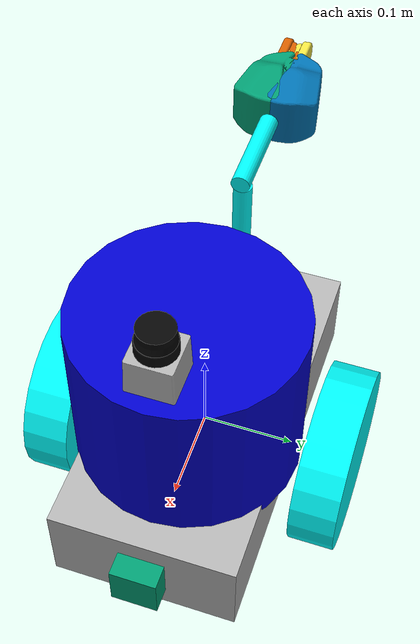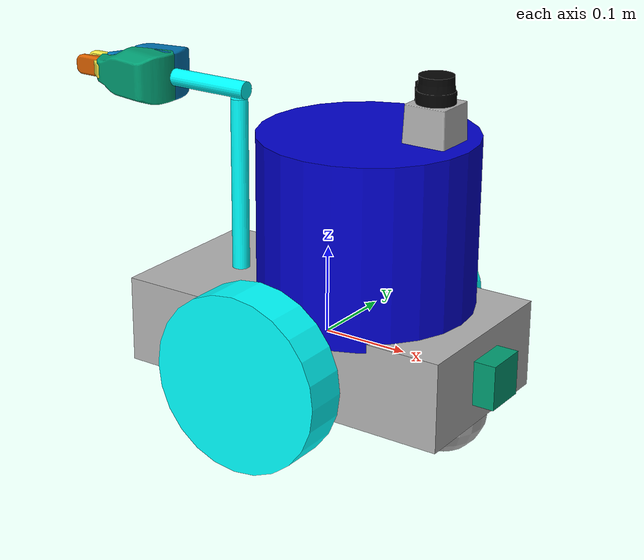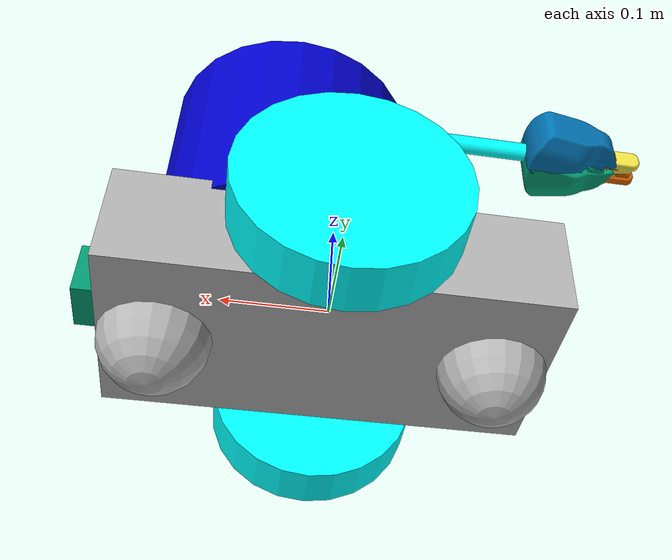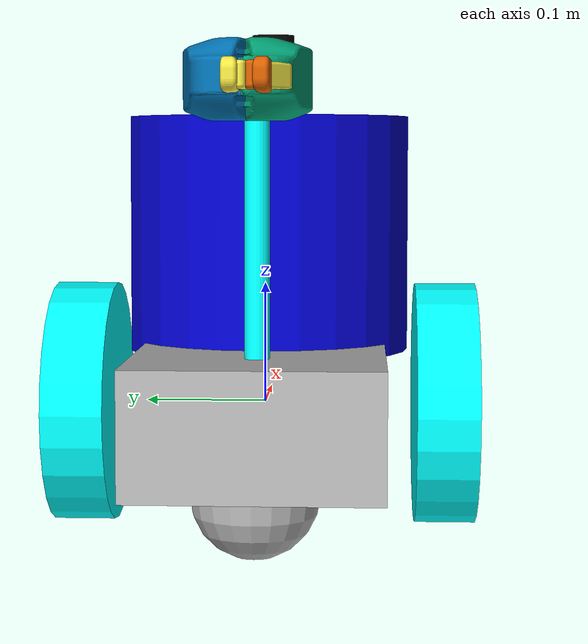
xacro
<?xml version='1.0'?>

<robot name="udacity_bot_v2" xmlns:xacro="http://www.ros.org/wiki/xacro">

  <xacro:include filename="$(find udacity_bot)/urdf/udacity_bot.gazebo" />
  <xacro:include filename="$(find udacity_bot)/urdf/gripper.xacro" />
  <link name="robot_footprint"></link>

  <joint name="robot_footprint_joint" type="fixed">
    <origin xyz="0 0 0" rpy="0 0 0" />
    <parent link="robot_footprint"/>
    <child link="chassis" />
  </joint>

  <link name='chassis'>
    <pose>0 0 0.1 0 0 0</pose>

    <inertial>
      <mass value="15.0"/>
      <origin xyz="0.0 0 0" rpy=" 0 0 0"/>
      <inertia
          ixx="0.1" ixy="0" ixz="0"
          iyy="0.1" iyz="0"
          izz="0.1"
      />
    </inertial>

    <collision name='collision'>
      <origin xyz="0 0 0" rpy=" 0 0 0"/>
      <geometry>
        <box size=".4 .2 .1"/>
      </geometry>
    </collision>

    <visual name='chassis_visual'>
      <origin xyz="0 0 0" rpy=" 0 0 0"/>
      <geometry>
        <box size=".4 .2 .1"/>
      </geometry>
    </visual>

    <collision name='back_caster_collision'>
      <origin xyz="-0.15 0 -0.05" rpy=" 0 0 0"/>
      <geometry>
        <sphere radius="0.05"/>
      </geometry>
      <surface>
        <friction>
          <ode>
            <mu>0</mu>
            <mu2>0</mu2>
            <slip1>1.0</slip1>
            <slip2>1.0</slip2>
          </ode>
        </friction>
      </surface>
    </collision>

    <visual name='back_caster_visual'>
      <origin xyz="-0.15 0 -0.05" rpy=" 0 0 0"/>
      <geometry>
        <sphere radius="0.05"/>
      </geometry>
    </visual>

    <collision name='front_caster_collision'>
      <origin xyz="0.15 0 -0.05" rpy=" 0 0 0"/>
      <geometry>
        <sphere radius="0.05"/>
      </geometry>
      <surface>
        <friction>
          <ode>
            <mu>0</mu>
            <mu2>0</mu2>
            <slip1>1.0</slip1>
            <slip2>1.0</slip2>
          </ode>
        </friction>
      </surface>
    </collision>

    <visual name='front_caster_visual'>
      <origin xyz="0.15 0 -0.05" rpy=" 0 0 0"/>
      <geometry>
        <sphere radius="0.05"/>
      </geometry>
    </visual>

   <visual name='upper_body_visual'>
     <origin xyz="0.05 0.0 0.14" rpy="0.0 0.0 0.0"/>
     <geometry>
       <cylinder radius="0.12" length="0.20"/>
     </geometry>
     <material name="blue">
       <color rgba="0 0 0.8 1"/>
     </material>
   </visual>

   <collision>
     <origin xyz="0.05 0.0 0.14" rpy="0.0 0.0 0.0"/>
     <geometry>
       <cylinder radius="0.12" length="0.20"/>
     </geometry>
   </collision>

  </link>

 <!-- WHEELS -->
 <link name="right_wheel">
   <inertial>
     <origin xyz="0.0 0.0 0.0" rpy="0.0 1.5707 1.5707"/>
     <mass value="5"/>
      <inertia
          ixx="0.1" ixy="0" ixz="0"
          iyy="0.1" iyz="0"
          izz="0.1"
      />
    </inertial>

   <visual>
     <origin xyz="0.0 0.0 0.0" rpy="0.0 1.5707 1.5707"/>
     <geometry>
       <cylinder radius="0.1" length="0.05"/>
     </geometry>
     <material name="Cyan">
       <color rgba="0 1.0 1.0 1.0"/>
     </material>
   </visual>

   <collision>
     <origin xyz="0.0 0.0 0.0" rpy="0.0 1.5707 1.5707"/>
     <geometry>
       <cylinder radius="0.1" length="0.05"/>
     </geometry>
   </collision>
 </link>

 <link name="left_wheel">
   <inertial>
     <origin xyz="0.0 0.0 0.0" rpy="0.0 1.5707 1.5707"/>
     <mass value="5"/>
      <inertia
          ixx="0.1" ixy="0" ixz="0"
          iyy="0.1" iyz="0"
          izz="0.1"
      />
    </inertial>

   <visual>
     <origin xyz="0.0 0.0 0.0" rpy="0.0 1.5707 1.5707"/>
     <geometry>
       <cylinder radius="0.1" length="0.05"/>
     </geometry>
     <material name="Cyan">
       <color rgba="0 1.0 1.0 1.0"/>
     </material>
   </visual>

   <collision>
     <origin xyz="0.0 0.0 0.0" rpy="0.0 1.5707 1.5707"/>
     <geometry>
       <cylinder radius="0.1" length="0.05"/>
     </geometry>
   </collision>
 </link>

  <joint type="continuous" name="left_wheel_hinge">
    <origin xyz="0 0.15 0" rpy="0 0 0"/>
    <child link="left_wheel"/>
    <parent link="chassis"/>
    <axis xyz="0 1 0" rpy="0 0 0"/>
    <limit effort="10000" velocity="1000"/>
    <joint_properties damping="1.0" friction="1.0"/>
  </joint>

  <joint type="continuous" name="right_wheel_hinge">
    <origin xyz="0 -0.15 0" rpy="0 0 0"/>
    <child link="right_wheel"/>
    <parent link="chassis"/>
    <axis xyz="0 1 0" rpy="0 0 0"/>
    <limit effort="10000" velocity="1000"/>
    <joint_properties damping="1.0" friction="1.0"/>
  </joint>

<!--CAMERA-->
 <link name="camera">
   <inertial>
     <origin xyz="0.0 0.0 0.0" rpy="0.0 0.0 0.0"/>
     <mass value="0.1"/>
      <inertia ixx="1e-6" ixy="0" ixz="0" iyy="1e-6" iyz="0" izz="1e-6"/>
    </inertial>

   <visual>
     <origin xyz="0.0 0.0 0.0" rpy="0.0 0.0 0.0"/>
     <geometry>
       <box size=".05 .05 .05"/>
     </geometry>
   </visual>

   <collision>
     <origin xyz="0.0 0.0 0.0" rpy="0.0 0.0 0.0"/>
     <geometry>
       <box size=".05 .05 .05"/>
     </geometry>
   </collision>
 </link>

  <joint type="fixed" name="camera_joint">
    <origin xyz="0.2 0.0 0.0" rpy="0 0 0"/>
    <child link="camera"/>
    <parent link="chassis"/>
    <axis xyz="0 1 0" rpy="0 0 0"/>
    <limit effort="10000" velocity="1000"/>
    <joint_properties damping="1.0" friction="1.0"/>
  </joint>

<!--LASER-->
<link name="hokuyo">
   <inertial>
     <origin xyz="-0.02 0.0 0.18" rpy="0.0 0.0 0.0"/>
     <mass value="0.1"/>
      <inertia ixx="1e-6" ixy="0" ixz="0" iyy="1e-6" iyz="0" izz="1e-6"/>
    </inertial>

   <visual>
     <origin xyz="-0.02 0.0 0.18" rpy="0.0 0.0 0.0"/>
     <geometry>
	   <mesh filename="package://udacity_bot/meshes/hokuyo.dae"/>
     </geometry>

   </visual>

   <collision>
     <origin xyz="-0.02 0.0 0.18" rpy="0.0 0.0 0.0"/>
     <geometry>
       <box size="0.1 .1 .1"/>
     </geometry>
   </collision>
 </link>

  <joint type="fixed" name="hokuyo_joint">
    <origin xyz=".15 0 .1" rpy="0 0 0"/>
    <child link="hokuyo"/>
    <parent link="chassis"/>
    <axis xyz="0 1 0" rpy="0 0 0"/>
    <limit effort="10000" velocity="1000"/>
    <joint_properties damping="1.0" friction="1.0"/>
  </joint>

</robot>

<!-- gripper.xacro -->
<robot name="gripper" xmlns:xacro="http://www.ros.org/wiki/xacro">

  <link name="gripper_pole">
    <visual>
      <geometry>
        <cylinder length="0.2" radius="0.01"/>
      </geometry>
      <origin rpy="0.0 0.0 0.0" xyz="0.0 0.0 0.15"/>
     <material name="Cyan">
       <color rgba="0 1.0 1.0 1.0"/>
     </material>
    </visual>
  </link>

  <link name="gripper_extension">
    <visual>
      <geometry>
        <cylinder length="0.1" radius="0.01"/>
      </geometry>
      <origin rpy="0.0 1.57075 0.0" xyz="-0.04 0.0 0.0"/>
     <material name="Cyan">
       <color rgba="0 1.0 1.0 1.0"/>
     </material>
    </visual>
  </link>

  <joint name="gripper_pole_base" type="fixed">
    <parent link="chassis"/>
    <child link="gripper_pole"/>
    <origin rpy="0 0 0" xyz="-0.12 0.0 0.0"/>
  </joint>

  <joint name="gripper_extension" type="fixed">
    <parent link="gripper_pole"/>
    <child link="gripper_extension"/>
    <origin rpy="0.0 0.0 0.0" xyz="0.0 0.0 0.26"/>
  </joint>

<joint name="left_gripper_joint" type="fixed">
    <axis xyz="0 0 1"/>
    <limit effort="1000.0" lower="0.0" upper="0.548" velocity="0.5"/>
    <origin rpy="0 0 3.141592" xyz="-0.1 0.0 0.0"/>
    <parent link="gripper_extension"/>
    <child link="left_gripper"/>
  </joint>

  <link name="left_gripper">
    <visual>
      <origin rpy="0.0 0 0" xyz="0 0 0"/>
      <geometry>
        <mesh filename="package://urdf_tutorial/meshes/l_finger.dae"/>
      </geometry>
    </visual>
  </link>

  <joint name="left_tip_joint" type="fixed">
    <parent link="left_gripper"/>
    <child link="left_tip"/>
  </joint>

  <link name="left_tip">
    <visual>
      <origin rpy="0.0 0 0" xyz="0.09137 0.00495 0"/>
      <geometry>
        <mesh filename="package://urdf_tutorial/meshes/l_finger_tip.dae"/>
      </geometry>
    </visual>
  </link>

  <joint name="right_gripper_joint" type="fixed">
    <axis xyz="0 0 -1"/>
    <limit effort="1000.0" lower="0.0" upper="0.548" velocity="0.5"/>
    <origin rpy="0 0 3.141592" xyz="-0.1 0.0 0.0"/>
    <parent link="gripper_extension"/>
    <child link="right_gripper"/>
  </joint>

  <link name="right_gripper">
    <visual>
      <origin rpy="-3.1415 0 0" xyz="0 0 0"/>
      <geometry>
        <mesh filename="package://urdf_tutorial/meshes/l_finger.dae"/>
      </geometry>
    </visual>
  </link>

  <joint name="right_tip_joint" type="fixed">
    <parent link="right_gripper"/>
    <child link="right_tip"/>
  </joint>

  <link name="right_tip">
    <visual>
      <origin rpy="-3.1415 0 0" xyz="0.09137 0.00495 0"/>
      <geometry>
        <mesh filename="package://urdf_tutorial/meshes/l_finger_tip.dae"/>
      </geometry>
    </visual>
  </link>

</robot>
